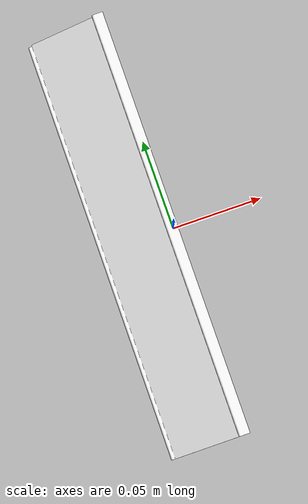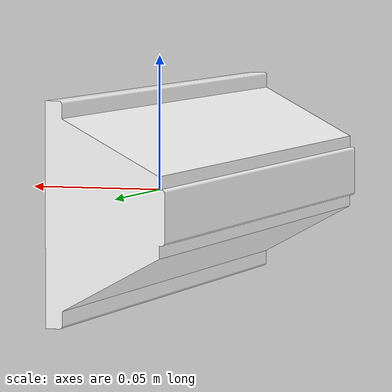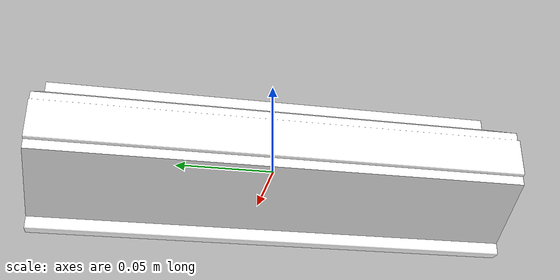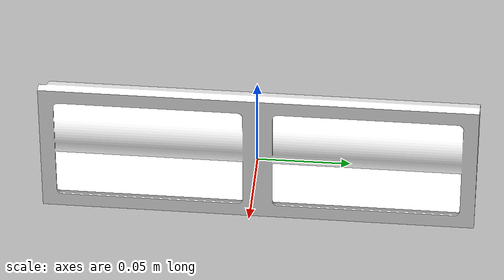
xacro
<?xml version="1.0"?>
<robot name="eddiebot" xmlns:xacro="http://ros.org/wiki/xacro">
  <xacro:include filename="$(find eddiebot_description)/urdf/utils/uv_lamp.urdf.xacro" />

  <link name="world"/>

  <xacro:uv_lamp name="uv_lamp" parent_link="world">
      <origin xyz="0 0 0" rpy="0 0 0"/>
  </xacro:uv_lamp>

</robot>

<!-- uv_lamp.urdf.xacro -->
<robot xmlns:xacro="http://ros.org/wiki/xacro">

  <xacro:macro name="uv_lamp" params="name parent_link *origin">
    <link name="${name}_link">

      <visual>
        <origin xyz="0 0 0" rpy="0 0 0"/>
        <geometry>
          <mesh filename="package://eddiebot_description/meshes/Lamp2.stl" scale="0.001 0.001 0.001"/>
        </geometry>
        <material name="white">
          <color rgba="1 1 1 1"/>
        </material>
      </visual>

      <collision>
        <origin xyz="0 0 0" rpy="0 0 0"/>
        <geometry>
          <mesh filename="package://eddiebot_description/meshes/Lamp2.stl" scale="0.001 0.001 0.001"/>
        </geometry>
      </collision>

      <inertial>
        <mass value="1.0"/>
        <origin xyz="-0.020181 -0.000000002 0.000000001"/>
        <inertia ixx="0.005460" ixy="0.000000000193" ixz="-0.000000000018"
                iyy="0.000523" iyz="0.000000000069"
                izz="0.005257"/>
      </inertial>
    </link>

    <joint name="${name}_joint" type="fixed">
      <parent link="${parent_link}"/>
      <child link="${name}_link"/>
      <xacro:insert_block name="origin"/>
    </joint>

    <gazebo reference="${name}_link">
      <material>Gazebo/White</material>
    </gazebo>
  </xacro:macro>

</robot>
